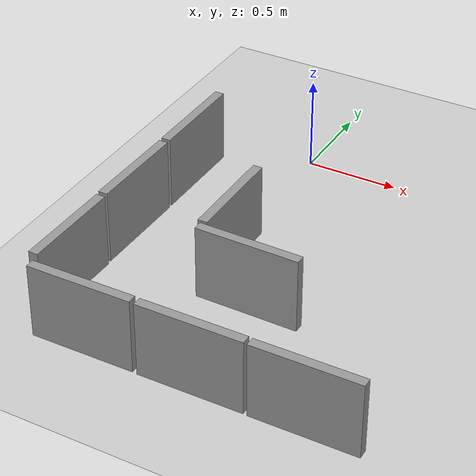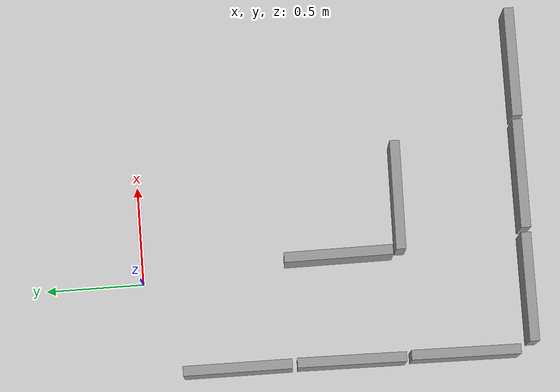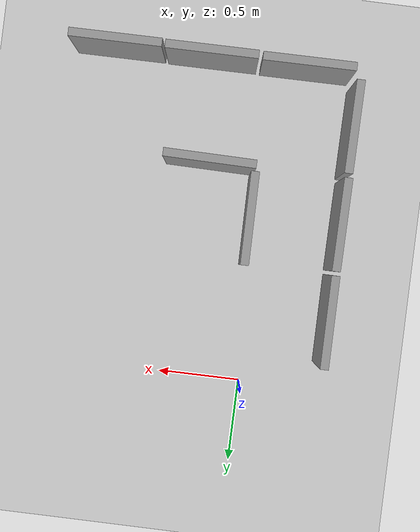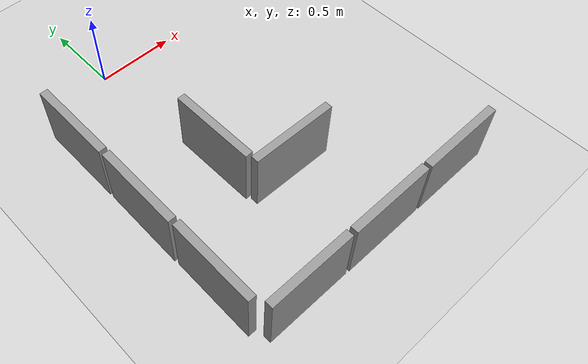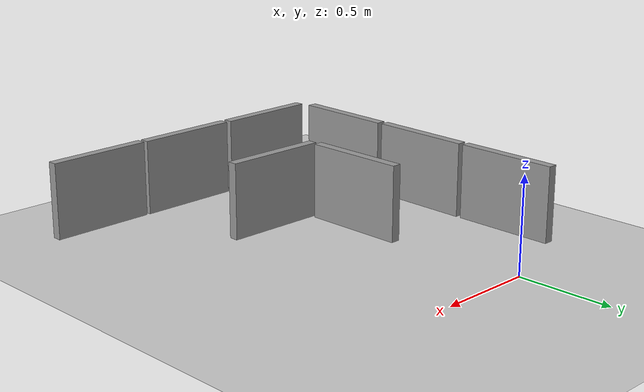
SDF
<sdf version="1.6">
 <world name="default">
  <model name="ground_plane">
   <static>1</static>
   <link name="link">
    <collision name="collision">
     <geometry><plane><normal>0 0 1</normal><size>100 100</size></plane></geometry>
     <surface>
      <contact><collide_bitmask>65535</collide_bitmask></contact>
      <friction><ode><mu>100</mu><mu2>50</mu2></ode></friction>
     </surface>
    </collision>
    <visual name="visual">
     <cast_shadows>0</cast_shadows>
     <geometry><plane><normal>0 0 1</normal><size>100 100</size></plane></geometry>
     <material>
      <script><uri>file://media/materials/scripts/gazebo.material</uri><name>Gazebo/Grey</name></script>
     </material>
    </visual>
   </link>
  </model>
  <model name="Maze_unit_clone_5_clone_0">
   <link name="link">
    <inertial>
     <mass>1</mass>
     <inertia>
      <ixx>0.166667</ixx>
      <ixy>0</ixy>
      <ixz>0</ixz>
      <iyy>0.166667</iyy>
      <iyz>0</iyz>
      <izz>0.166667</izz>
     </inertia>
    </inertial>
    <pose>-0.463146 -0.530916 0 0 -0 0</pose>
    <visual name="visual">
     <geometry><box><size>0.05 0.55 0.4</size></box></geometry>
     <material>
      <script><name>Gazebo/Grey</name><uri>file://media/materials/scripts/gazebo.material</uri></script>
      <shader type="vertex"><normal_map>__default__</normal_map></shader>
      <ambient>0.933 0.933 0.925 1</ambient>
      <diffuse>0.7 0.7 0.7 1</diffuse>
      <specular>0.01 0.01 0.01 1</specular>
      <emissive>0 0 0 1</emissive>
     </material>
    </visual>
    <collision name="collision">
     <geometry><box><size>0.05 0.55 0.4</size></box></geometry>
     <surface>
      <friction>
       <ode><mu>1</mu><mu2>1</mu2><fdir1>0 0 0</fdir1><slip1>0</slip1><slip2>0</slip2></ode>
       <torsional>
        <coefficient>1</coefficient>
        <patch_radius>0</patch_radius>
        <surface_radius>0</surface_radius>
        <use_patch_radius>1</use_patch_radius>
        <ode><slip>0</slip></ode>
       </torsional>
      </friction>
      <bounce><restitution_coefficient>0</restitution_coefficient><threshold>1e+06</threshold></bounce>
      <contact>
       <collide_without_contact>0</collide_without_contact>
       <collide_without_contact_bitmask>1</collide_without_contact_bitmask>
       <collide_bitmask>1</collide_bitmask>
       <ode>
        <soft_cfm>0</soft_cfm>
        <soft_erp>0.2</soft_erp>
        <kp>1e+13</kp>
        <kd>1</kd>
        <max_vel>0.01</max_vel>
        <min_depth>0</min_depth>
       </ode>
       <bullet>
        <split_impulse>1</split_impulse>
        <split_impulse_penetration_threshold>-0.01</split_impulse_penetration_threshold>
        <soft_cfm>0</soft_cfm>
        <soft_erp>0.2</soft_erp>
        <kp>1e+13</kp>
        <kd>1</kd>
       </bullet>
      </contact>
     </surface>
    </collision>
   </link>
   <static>1</static>
   <pose>0.43774 -1.48772 0.200002 -0 -5e-06 1.57668</pose>
  </model>
  <model name="Maze_unit_clone_5_clone">
   <link name="link">
    <inertial>
     <mass>1</mass>
     <inertia>
      <ixx>0.166667</ixx>
      <ixy>0</ixy>
      <ixz>0</ixz>
      <iyy>0.166667</iyy>
      <iyz>0</iyz>
      <izz>0.166667</izz>
     </inertia>
    </inertial>
    <pose>-0.463146 -0.530916 0 0 -0 0</pose>
    <visual name="visual">
     <geometry><box><size>0.05 0.55 0.4</size></box></geometry>
     <material>
      <script><name>Gazebo/Grey</name><uri>file://media/materials/scripts/gazebo.material</uri></script>
      <shader type="vertex"><normal_map>__default__</normal_map></shader>
      <ambient>0.933 0.933 0.925 1</ambient>
      <diffuse>0.7 0.7 0.7 1</diffuse>
      <specular>0.01 0.01 0.01 1</specular>
      <emissive>0 0 0 1</emissive>
     </material>
    </visual>
    <collision name="collision">
     <geometry><box><size>0.05 0.55 0.4</size></box></geometry>
     <surface>
      <friction>
       <ode><mu>1</mu><mu2>1</mu2><fdir1>0 0 0</fdir1><slip1>0</slip1><slip2>0</slip2></ode>
       <torsional>
        <coefficient>1</coefficient>
        <patch_radius>0</patch_radius>
        <surface_radius>0</surface_radius>
        <use_patch_radius>1</use_patch_radius>
        <ode><slip>0</slip></ode>
       </torsional>
      </friction>
      <bounce><restitution_coefficient>0</restitution_coefficient><threshold>1e+06</threshold></bounce>
      <contact>
       <collide_without_contact>0</collide_without_contact>
       <collide_without_contact_bitmask>1</collide_without_contact_bitmask>
       <collide_bitmask>1</collide_bitmask>
       <ode>
        <soft_cfm>0</soft_cfm>
        <soft_erp>0.2</soft_erp>
        <kp>1e+13</kp>
        <kd>1</kd>
        <max_vel>0.01</max_vel>
        <min_depth>0</min_depth>
       </ode>
       <bullet>
        <split_impulse>1</split_impulse>
        <split_impulse_penetration_threshold>-0.01</split_impulse_penetration_threshold>
        <soft_cfm>0</soft_cfm>
        <soft_erp>0.2</soft_erp>
        <kp>1e+13</kp>
        <kd>1</kd>
       </bullet>
      </contact>
     </surface>
    </collision>
   </link>
   <static>1</static>
   <pose>-0.130085 -1.48837 0.200001 0 -2e-06 1.5766</pose>
  </model>
  <model name="Maze_unit_clone_5">
   <link name="link">
    <inertial>
     <mass>1</mass>
     <inertia>
      <ixx>0.166667</ixx>
      <ixy>0</ixy>
      <ixz>0</ixz>
      <iyy>0.166667</iyy>
      <iyz>0</iyz>
      <izz>0.166667</izz>
     </inertia>
    </inertial>
    <pose>-0.463146 -0.530916 0 0 -0 0</pose>
    <visual name="visual">
     <geometry><box><size>0.05 0.55 0.4</size></box></geometry>
     <material>
      <script><name>Gazebo/Grey</name><uri>file://media/materials/scripts/gazebo.material</uri></script>
      <shader type="vertex"><normal_map>__default__</normal_map></shader>
      <ambient>0.933 0.933 0.925 1</ambient>
      <diffuse>0.7 0.7 0.7 1</diffuse>
      <specular>0.01 0.01 0.01 1</specular>
      <emissive>0 0 0 1</emissive>
     </material>
    </visual>
    <collision name="collision">
     <geometry><box><size>0.05 0.55 0.4</size></box></geometry>
     <surface>
      <friction>
       <ode><mu>1</mu><mu2>1</mu2><fdir1>0 0 0</fdir1><slip1>0</slip1><slip2>0</slip2></ode>
       <torsional>
        <coefficient>1</coefficient>
        <patch_radius>0</patch_radius>
        <surface_radius>0</surface_radius>
        <use_patch_radius>1</use_patch_radius>
        <ode><slip>0</slip></ode>
       </torsional>
      </friction>
      <bounce><restitution_coefficient>0</restitution_coefficient><threshold>1e+06</threshold></bounce>
      <contact>
       <collide_without_contact>0</collide_without_contact>
       <collide_without_contact_bitmask>1</collide_without_contact_bitmask>
       <collide_bitmask>1</collide_bitmask>
       <ode>
        <soft_cfm>0</soft_cfm>
        <soft_erp>0.2</soft_erp>
        <kp>1e+13</kp>
        <kd>1</kd>
        <max_vel>0.01</max_vel>
        <min_depth>0</min_depth>
       </ode>
       <bullet>
        <split_impulse>1</split_impulse>
        <split_impulse_penetration_threshold>-0.01</split_impulse_penetration_threshold>
        <soft_cfm>0</soft_cfm>
        <soft_erp>0.2</soft_erp>
        <kp>1e+13</kp>
        <kd>1</kd>
       </bullet>
      </contact>
     </surface>
    </collision>
   </link>
   <static>1</static>
   <pose>-0.704211 -1.48861 0.200001 0 -2e-06 1.5766</pose>
  </model>
  <model name="Maze_unit">
   <link name="link">
    <inertial>
     <mass>1</mass>
     <inertia>
      <ixx>0.166667</ixx>
      <ixy>0</ixy>
      <ixz>0</ixz>
      <iyy>0.166667</iyy>
      <iyz>0</iyz>
      <izz>0.166667</izz>
     </inertia>
    </inertial>
    <pose>-0.463146 -0.530916 0 0 -0 0</pose>
    <visual name="visual">
     <geometry><box><size>0.05 0.55 0.4</size></box></geometry>
     <material>
      <script><name>Gazebo/Grey</name><uri>file://media/materials/scripts/gazebo.material</uri></script>
      <shader type="vertex"><normal_map>__default__</normal_map></shader>
      <ambient>0.933 0.933 0.925 1</ambient>
      <diffuse>0.7 0.7 0.7 1</diffuse>
      <specular>0.01 0.01 0.01 1</specular>
      <emissive>0 0 0 1</emissive>
     </material>
    </visual>
    <collision name="collision">
     <geometry><box><size>0.05 0.55 0.4</size></box></geometry>
     <surface>
      <friction>
       <ode><mu>1</mu><mu2>1</mu2><fdir1>0 0 0</fdir1><slip1>0</slip1><slip2>0</slip2></ode>
       <torsional>
        <coefficient>1</coefficient>
        <patch_radius>0</patch_radius>
        <surface_radius>0</surface_radius>
        <use_patch_radius>1</use_patch_radius>
        <ode><slip>0</slip></ode>
       </torsional>
      </friction>
      <bounce><restitution_coefficient>0</restitution_coefficient><threshold>1e+06</threshold></bounce>
      <contact>
       <collide_without_contact>0</collide_without_contact>
       <collide_without_contact_bitmask>1</collide_without_contact_bitmask>
       <collide_bitmask>1</collide_bitmask>
       <ode>
        <soft_cfm>0</soft_cfm>
        <soft_erp>0.2</soft_erp>
        <kp>1e+13</kp>
        <kd>1</kd>
        <max_vel>0.01</max_vel>
        <min_depth>0</min_depth>
       </ode>
       <bullet>
        <split_impulse>1</split_impulse>
        <split_impulse_penetration_threshold>-0.01</split_impulse_penetration_threshold>
        <soft_cfm>0</soft_cfm>
        <soft_erp>0.2</soft_erp>
        <kp>1e+13</kp>
        <kd>1</kd>
       </bullet>
      </contact>
     </surface>
    </collision>
   </link>
   <static>1</static>
   <pose>-0.00693 -1.07743 0.199993 -9e-06 -0 -0.010706</pose>
  </model>
  <model name="Maze_unit_0">
   <link name="link">
    <inertial>
     <mass>1</mass>
     <inertia>
      <ixx>0.166667</ixx>
      <ixy>0</ixy>
      <ixz>0</ixz>
      <iyy>0.166667</iyy>
      <iyz>0</iyz>
      <izz>0.166667</izz>
     </inertia>
    </inertial>
    <pose>-0.463146 -0.530916 0 0 -0 0</pose>
    <visual name="visual">
     <geometry><box><size>0.05 0.55 0.4</size></box></geometry>
     <material>
      <script><name>Gazebo/Grey</name><uri>file://media/materials/scripts/gazebo.material</uri></script>
      <shader type="vertex"><normal_map>__default__</normal_map></shader>
      <ambient>0.933 0.933 0.925 1</ambient>
      <diffuse>0.7 0.7 0.7 1</diffuse>
      <specular>0.01 0.01 0.01 1</specular>
      <emissive>0 0 0 1</emissive>
     </material>
    </visual>
    <collision name="collision">
     <geometry><box><size>0.05 0.55 0.4</size></box></geometry>
     <surface>
      <friction>
       <ode><mu>1</mu><mu2>1</mu2><fdir1>0 0 0</fdir1><slip1>0</slip1><slip2>0</slip2></ode>
       <torsional>
        <coefficient>1</coefficient>
        <patch_radius>0</patch_radius>
        <surface_radius>0</surface_radius>
        <use_patch_radius>1</use_patch_radius>
        <ode><slip>0</slip></ode>
       </torsional>
      </friction>
      <bounce><restitution_coefficient>0</restitution_coefficient><threshold>1e+06</threshold></bounce>
      <contact>
       <collide_without_contact>0</collide_without_contact>
       <collide_without_contact_bitmask>1</collide_without_contact_bitmask>
       <collide_bitmask>1</collide_bitmask>
       <ode>
        <soft_cfm>0</soft_cfm>
        <soft_erp>0.2</soft_erp>
        <kp>1e+13</kp>
        <kd>1</kd>
        <max_vel>0.01</max_vel>
        <min_depth>0</min_depth>
       </ode>
       <bullet>
        <split_impulse>1</split_impulse>
        <split_impulse_penetration_threshold>-0.01</split_impulse_penetration_threshold>
        <soft_cfm>0</soft_cfm>
        <soft_erp>0.2</soft_erp>
        <kp>1e+13</kp>
        <kd>1</kd>
       </bullet>
      </contact>
     </surface>
    </collision>
   </link>
   <static>1</static>
   <pose>-0.005538 -0.503001 0.2 0 0 -0.010815</pose>
  </model>
  <model name="Maze_unit_clone">
   <link name="link">
    <inertial>
     <mass>1</mass>
     <inertia>
      <ixx>0.166667</ixx>
      <ixy>0</ixy>
      <ixz>0</ixz>
      <iyy>0.166667</iyy>
      <iyz>0</iyz>
      <izz>0.166667</izz>
     </inertia>
    </inertial>
    <pose>-0.463146 -0.530916 0 0 -0 0</pose>
    <visual name="visual">
     <geometry><box><size>0.05 0.55 0.4</size></box></geometry>
     <material>
      <script><name>Gazebo/Grey</name><uri>file://media/materials/scripts/gazebo.material</uri></script>
      <shader type="vertex"><normal_map>__default__</normal_map></shader>
      <ambient>0.933 0.933 0.925 1</ambient>
      <diffuse>0.7 0.7 0.7 1</diffuse>
      <specular>0.01 0.01 0.01 1</specular>
      <emissive>0 0 0 1</emissive>
     </material>
    </visual>
    <collision name="collision">
     <geometry><box><size>0.05 0.55 0.4</size></box></geometry>
     <surface>
      <friction>
       <ode><mu>1</mu><mu2>1</mu2><fdir1>0 0 0</fdir1><slip1>0</slip1><slip2>0</slip2></ode>
       <torsional>
        <coefficient>1</coefficient>
        <patch_radius>0</patch_radius>
        <surface_radius>0</surface_radius>
        <use_patch_radius>1</use_patch_radius>
        <ode><slip>0</slip></ode>
       </torsional>
      </friction>
      <bounce><restitution_coefficient>0</restitution_coefficient><threshold>1e+06</threshold></bounce>
      <contact>
       <collide_without_contact>0</collide_without_contact>
       <collide_without_contact_bitmask>1</collide_without_contact_bitmask>
       <collide_bitmask>1</collide_bitmask>
       <ode>
        <soft_cfm>0</soft_cfm>
        <soft_erp>0.2</soft_erp>
        <kp>1e+13</kp>
        <kd>1</kd>
        <max_vel>0.01</max_vel>
        <min_depth>0</min_depth>
       </ode>
       <bullet>
        <split_impulse>1</split_impulse>
        <split_impulse_penetration_threshold>-0.01</split_impulse_penetration_threshold>
        <soft_cfm>0</soft_cfm>
        <soft_erp>0.2</soft_erp>
        <kp>1e+13</kp>
        <kd>1</kd>
       </bullet>
      </contact>
     </surface>
    </collision>
   </link>
   <static>1</static>
   <pose>-0.009371 0.076833 0.2 0 0 -0.000526</pose>
  </model>
  <model name="Maze_unit_clone_2">
   <link name="link">
    <inertial>
     <mass>1</mass>
     <inertia>
      <ixx>0.166667</ixx>
      <ixy>0</ixy>
      <ixz>0</ixz>
      <iyy>0.166667</iyy>
      <iyz>0</iyz>
      <izz>0.166667</izz>
     </inertia>
    </inertial>
    <pose>-0.463146 -0.530916 0 0 -0 0</pose>
    <visual name="visual">
     <geometry><box><size>0.05 0.55 0.4</size></box></geometry>
     <material>
      <script><name>Gazebo/Grey</name><uri>file://media/materials/scripts/gazebo.material</uri></script>
      <shader type="vertex"><normal_map>__default__</normal_map></shader>
      <ambient>0.933 0.933 0.925 1</ambient>
      <diffuse>0.7 0.7 0.7 1</diffuse>
      <specular>0.01 0.01 0.01 1</specular>
      <emissive>0 0 0 1</emissive>
     </material>
    </visual>
    <collision name="collision">
     <geometry><box><size>0.05 0.55 0.4</size></box></geometry>
     <surface>
      <friction>
       <ode><mu>1</mu><mu2>1</mu2><fdir1>0 0 0</fdir1><slip1>0</slip1><slip2>0</slip2></ode>
       <torsional>
        <coefficient>1</coefficient>
        <patch_radius>0</patch_radius>
        <surface_radius>0</surface_radius>
        <use_patch_radius>1</use_patch_radius>
        <ode><slip>0</slip></ode>
       </torsional>
      </friction>
      <bounce><restitution_coefficient>0</restitution_coefficient><threshold>1e+06</threshold></bounce>
      <contact>
       <collide_without_contact>0</collide_without_contact>
       <collide_without_contact_bitmask>1</collide_without_contact_bitmask>
       <collide_bitmask>1</collide_bitmask>
       <ode>
        <soft_cfm>0</soft_cfm>
        <soft_erp>0.2</soft_erp>
        <kp>1e+13</kp>
        <kd>1</kd>
        <max_vel>0.01</max_vel>
        <min_depth>0</min_depth>
       </ode>
       <bullet>
        <split_impulse>1</split_impulse>
        <split_impulse_penetration_threshold>-0.01</split_impulse_penetration_threshold>
        <soft_cfm>0</soft_cfm>
        <soft_erp>0.2</soft_erp>
        <kp>1e+13</kp>
        <kd>1</kd>
       </bullet>
      </contact>
     </surface>
    </collision>
   </link>
   <static>1</static>
   <pose>0.523927 -0.465414 0.2 0 -0 0.006084</pose>
  </model>
  <model name="Maze_unit_clone_5_clone_9">
   <link name="link">
    <inertial>
     <mass>1</mass>
     <inertia>
      <ixx>0.166667</ixx>
      <ixy>0</ixy>
      <ixz>0</ixz>
      <iyy>0.166667</iyy>
      <iyz>0</iyz>
      <izz>0.166667</izz>
     </inertia>
    </inertial>
    <pose>-0.463146 -0.530916 -0 0 -0 0</pose>
    <visual name="visual">
     <geometry><box><size>0.05 0.55 0.4</size></box></geometry>
     <material>
      <script><name>Gazebo/Grey</name><uri>file://media/materials/scripts/gazebo.material</uri></script>
      <shader type="vertex"><normal_map>__default__</normal_map></shader>
      <ambient>0.933 0.933 0.925 1</ambient>
      <diffuse>0.7 0.7 0.7 1</diffuse>
      <specular>0.01 0.01 0.01 1</specular>
      <emissive>0 0 0 1</emissive>
     </material>
    </visual>
    <collision name="collision">
     <geometry><box><size>0.05 0.55 0.4</size></box></geometry>
     <surface>
      <friction>
       <ode><mu>1</mu><mu2>1</mu2><fdir1>0 0 0</fdir1><slip1>0</slip1><slip2>0</slip2></ode>
       <torsional>
        <coefficient>1</coefficient>
        <patch_radius>0</patch_radius>
        <surface_radius>0</surface_radius>
        <use_patch_radius>1</use_patch_radius>
        <ode><slip>0</slip></ode>
       </torsional>
      </friction>
      <bounce><restitution_coefficient>0</restitution_coefficient><threshold>1e+06</threshold></bounce>
      <contact>
       <collide_without_contact>0</collide_without_contact>
       <collide_without_contact_bitmask>1</collide_without_contact_bitmask>
       <collide_bitmask>1</collide_bitmask>
       <ode>
        <soft_cfm>0</soft_cfm>
        <soft_erp>0.2</soft_erp>
        <kp>1e+13</kp>
        <kd>1</kd>
        <max_vel>0.01</max_vel>
        <min_depth>0</min_depth>
       </ode>
       <bullet>
        <split_impulse>1</split_impulse>
        <split_impulse_penetration_threshold>-0.01</split_impulse_penetration_threshold>
        <soft_cfm>0</soft_cfm>
        <soft_erp>0.2</soft_erp>
        <kp>1e+13</kp>
        <kd>1</kd>
       </bullet>
      </contact>
     </surface>
    </collision>
   </link>
   <static>1</static>
   <pose>-0.187047 -0.8494 0.199998 0 4e-06 1.55995</pose>
  </model>
 </world>
</sdf>
